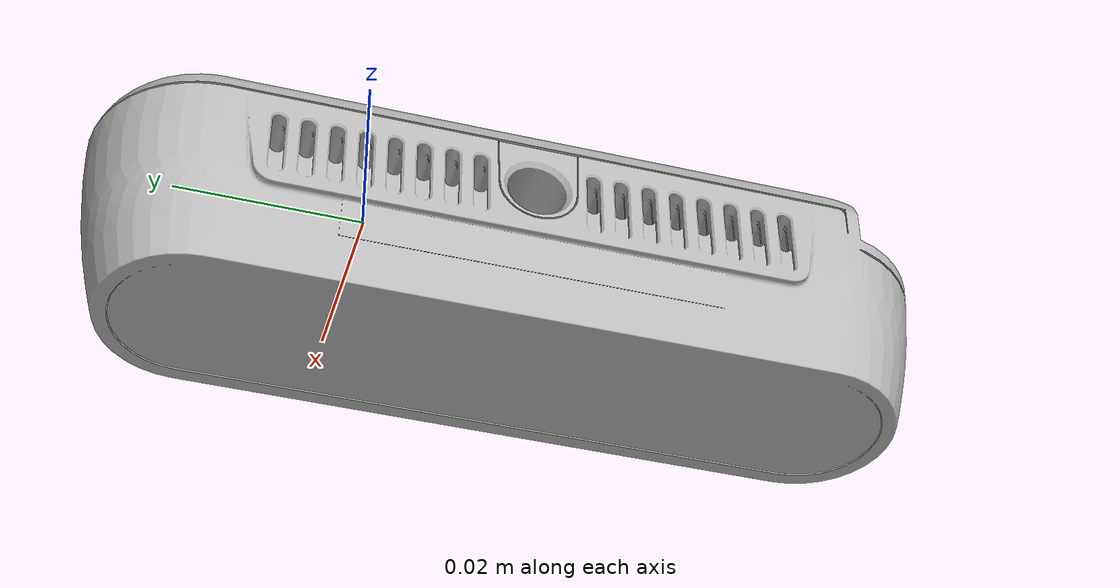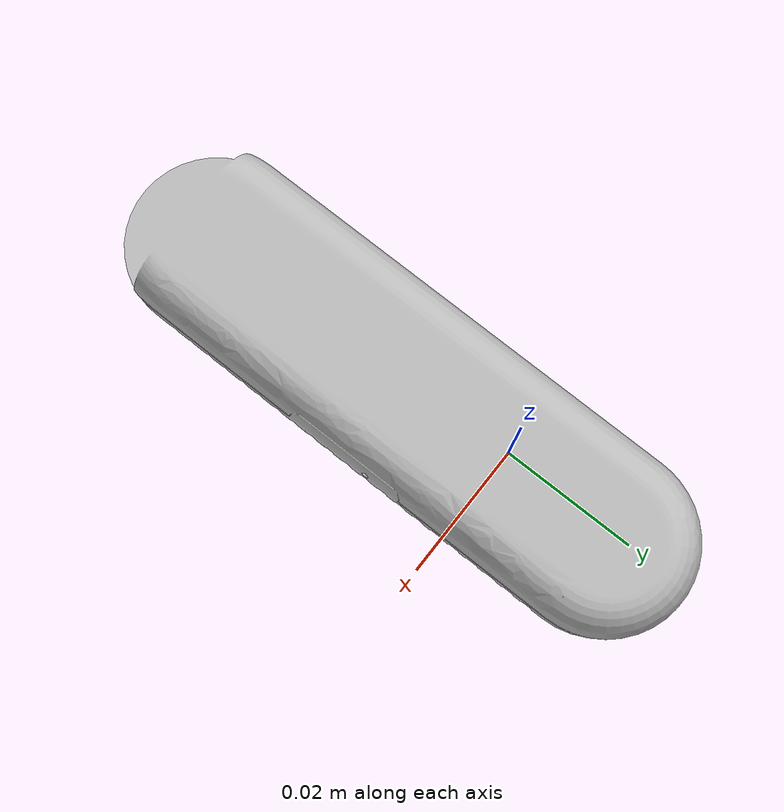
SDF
<?xml version="1.0" encoding="UTF-8"?>
<sdf version='1.9'>
  <model name='d435i'>
    <pose>0 0 0 0 0 0</pose>
    <self_collide>false</self_collide>
    <static>false</static>
    <link name="camera_link">
      <inertial>
        <pose>0 0 0 0 0 0</pose>
        <mass>0.001</mass>
        <inertia>
          <ixx>1.0e-05</ixx>
          <ixy>0</ixy>
          <ixz>0</ixz>
          <iyy>1.0e-05</iyy>
          <iyz>0</iyz>
          <izz>1.0e-05</izz>
        </inertia>
      </inertial>
      <!-- URDF mesh origin: zero_depth_to_glass + glass_to_front, -cam_depth_py, 0 -->
      <visual name="d435i/visual">
        <pose>0.0043 -0.0175 0 1.5707963 0 1.5707963</pose>
        <geometry>
          <mesh>
            <scale>1 1 1</scale>
            <uri>model://d435/meshes/d435.dae</uri>
          </mesh>
        </geometry>
      </visual>
      <!-- URDF collision box at (0, -0.0175, 0), size 0.02505 x 0.090 x 0.025 -->
      <collision name="d435i/collision">
        <pose>0 -0.0175 0 0 0 0</pose>
        <geometry>
          <box>
            <size>0.02505 0.090 0.025</size>
          </box>
        </geometry>
      </collision>

      <!-- D435i RGB color camera: 848x480 @ 30 fps, HFOV 69.4 deg (RealSense stream) -->
      <!-- URDF color frame offset: 0 0.015 0 from camera_link -->
      <sensor name="d435i_color" type="camera">
        <gz_frame_id>camera_link</gz_frame_id>
        <pose>0 0.015 0 0 0 0</pose>
        <camera>
          <horizontal_fov>1.211</horizontal_fov>
          <image>
            <width>848</width>
            <height>480</height>
            <format>RGB_INT8</format>
          </image>
          <clip>
            <near>0.1</near>
            <far>100</far>
          </clip>
          <noise>
            <type>gaussian</type>
            <mean>0.0</mean>
            <stddev>0.007</stddev>
          </noise>
          <optical_frame_id>camera_color_optical_frame</optical_frame_id>
          <camera_info_topic>camera/color/camera_info</camera_info_topic>
        </camera>
        <always_on>1</always_on>
        <update_rate>30</update_rate>
        <visualize>false</visualize>
        <topic>camera/color/image_raw</topic>
      </sensor>

      <sensor name="d435i_depth" type="depth_camera">
        <gz_frame_id>camera_link</gz_frame_id>
        <pose>0 0.015 0 0 0 0</pose>
        <camera>
          <horizontal_fov>1.211</horizontal_fov>
          <image>
            <width>848</width>
            <height>480</height>
            <format>R_FLOAT32</format>
          </image>
          <clip>
            <near>0.105</near>
            <far>10.0</far>
          </clip>
          <noise>
            <type>gaussian</type>
            <mean>0.0</mean>
            <stddev>0.005</stddev>
          </noise>
          <optical_frame_id>camera_color_optical_frame</optical_frame_id>
          <camera_info_topic>camera/aligned_depth_to_color/camera_info</camera_info_topic>
        </camera>
        <always_on>1</always_on>
        <update_rate>30</update_rate>
        <visualize>false</visualize>
        <topic>camera/aligned_depth_to_color/image_raw</topic>
      </sensor>

      <!-- D435i IMU (BMI055): URDF accel/gyro offset from camera_link -->
      <sensor name="d435i_imu" type="imu">
        <gz_frame_id>camera_imu_optical_frame</gz_frame_id>
        <always_on>1</always_on>
        <update_rate>200</update_rate>
        <pose>-0.01174 -0.00552 0.0051 0 0 0</pose>
        <imu>
          <angular_velocity>
            <x>
              <noise type="gaussian">
                <mean>0</mean>
                <stddev>0.00018665</stddev>
              </noise>
            </x>
            <y>
              <noise type="gaussian">
                <mean>0</mean>
                <stddev>0.00018665</stddev>
              </noise>
            </y>
            <z>
              <noise type="gaussian">
                <mean>0</mean>
                <stddev>0.00018665</stddev>
              </noise>
            </z>
          </angular_velocity>
          <linear_acceleration>
            <x>
              <noise type="gaussian">
                <mean>0</mean>
                <stddev>0.00186</stddev>
              </noise>
            </x>
            <y>
              <noise type="gaussian">
                <mean>0</mean>
                <stddev>0.00186</stddev>
              </noise>
            </y>
            <z>
              <noise type="gaussian">
                <mean>0</mean>
                <stddev>0.00186</stddev>
              </noise>
            </z>
          </linear_acceleration>
        </imu>
        <topic>camera/imu</topic>
      </sensor>

      <gravity>true</gravity>
      <velocity_decay/>
    </link>
  </model>
</sdf>
